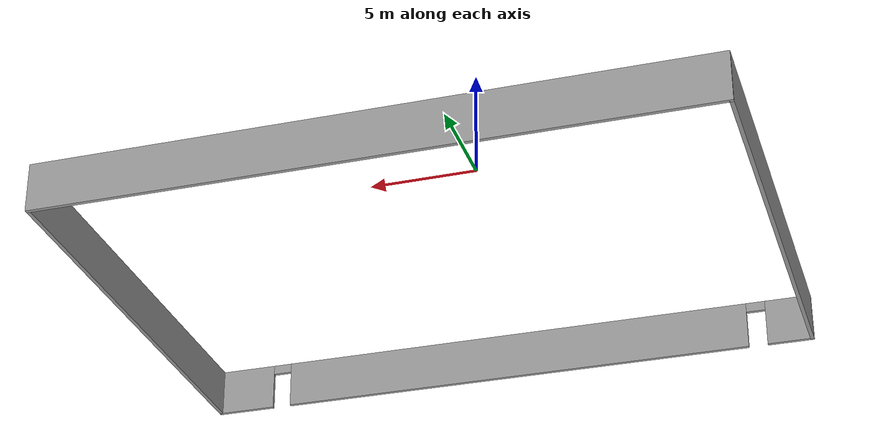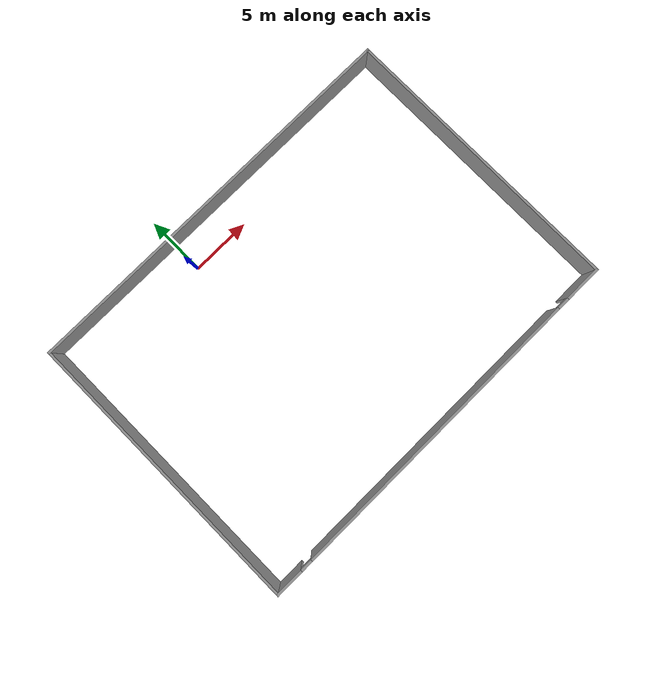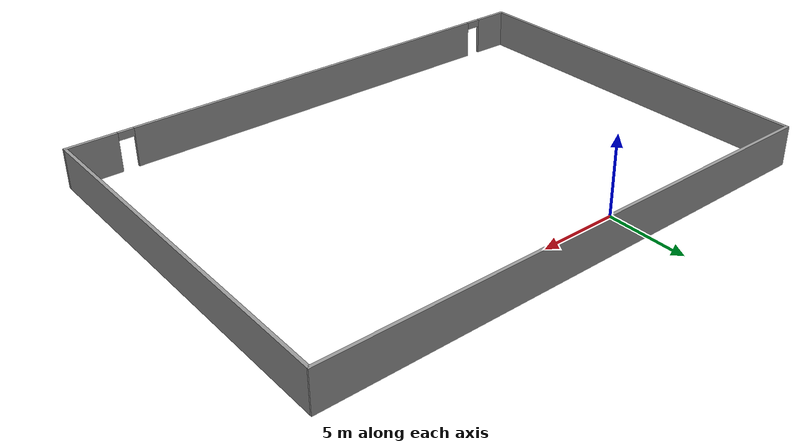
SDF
<?xml version='1.0'?>
<sdf version='1.4'>
  <model name='wall2'>
    <link name='Wall_10'>
      <collision name='Wall_10_Collision'>
        <geometry>
          <box>
            <size>24 0.2 2.5</size>
          </box>
        </geometry>
        <pose>0 0 1.25 0 -0 0</pose>
      </collision>
      <visual name='Wall_10_Visual'>
        <pose>0 0 1.25 0 -0 0</pose>
        <geometry>
          <box>
            <size>24 0.2 2.5</size>
          </box>
        </geometry>
        <material>
          <script>
            <uri>file://media/materials/scripts/gazebo.material</uri>
            <name>Gazebo/Grey</name>
          </script>
        </material>
      </visual>
      <velocity_decay>
        <linear>0</linear>
        <angular>0</angular>
      </velocity_decay>
      <pose>-12 -9.5 0 0 -0 1.5708</pose>
    </link>
    <link name='Wall_6'>
      <collision name='Wall_6_Collision'>
        <geometry>
          <box>
            <size>33.2 0.2 2.5</size>
          </box>
        </geometry>
        <pose>0 0 1.25 0 -0 0</pose>
      </collision>
      <visual name='Wall_6_Visual'>
        <pose>0 0 1.25 0 -0 0</pose>
        <geometry>
          <box>
            <size>33.2 0.2 2.5</size>
          </box>
        </geometry>
        <material>
          <script>
            <uri>file://media/materials/scripts/gazebo.material</uri>
            <name>Gazebo/Grey</name>
          </script>
        </material>
      </visual>
      <velocity_decay>
        <linear>0</linear>
        <angular>0</angular>
      </velocity_decay>
      <pose>4.5 2.5 0 0 -0 0</pose>
    </link>
    <link name='Wall_7'>
      <collision name='Wall_7_Collision'>
        <geometry>
          <box>
            <size>24 0.2 2.5</size>
          </box>
        </geometry>
        <pose>0 0 1.25 0 -0 0</pose>
      </collision>
      <visual name='Wall_7_Visual'>
        <pose>0 0 1.25 0 -0 0</pose>
        <geometry>
          <box>
            <size>24 0.2 2.5</size>
          </box>
        </geometry>
        <material>
          <script>
            <uri>file://media/materials/scripts/gazebo.material</uri>
            <name>Gazebo/Grey</name>
          </script>
        </material>
      </visual>
      <velocity_decay>
        <linear>0</linear>
        <angular>0</angular>
      </velocity_decay>
      <pose>21 -9.5 0 0 0 -1.5708</pose>
    </link>
    <link name='Wall_8'>
      <pose>4.5 -21.5 0 0 -0 3.14159</pose>
      <visual name='Wall_8_Visual_0'>
        <pose>-15.009 0 1.25 0 -0 0</pose>
        <geometry>
          <box>
            <size>3.182 0.2 2.5</size>
          </box>
        </geometry>
        <material>
          <script>
            <uri>file://media/materials/scripts/gazebo.material</uri>
            <name>Gazebo/Grey</name>
          </script>
        </material>
      </visual>
      <collision name='Wall_8_Collision_0'>
        <geometry>
          <box>
            <size>3.182 0.2 2.5</size>
          </box>
        </geometry>
        <pose>-15.009 0 1.25 0 -0 0</pose>
      </collision>
      <visual name='Wall_8_Visual_1'>
        <pose>0.382542 0 1.25 0 -0 0</pose>
        <geometry>
          <box>
            <size>25.6011 0.2 2.5</size>
          </box>
        </geometry>
        <material>
          <script>
            <uri>file://media/materials/scripts/gazebo.material</uri>
            <name>Gazebo/Grey</name>
          </script>
        </material>
      </visual>
      <collision name='Wall_8_Collision_1'>
        <geometry>
          <box>
            <size>25.6011 0.2 2.5</size>
          </box>
        </geometry>
        <pose>0.382542 0 1.25 0 -0 0</pose>
      </collision>
      <visual name='Wall_8_Visual_2'>
        <pose>15.3915 0 1.25 0 -0 0</pose>
        <geometry>
          <box>
            <size>2.41692 0.2 2.5</size>
          </box>
        </geometry>
        <material>
          <script>
            <uri>file://media/materials/scripts/gazebo.material</uri>
            <name>Gazebo/Grey</name>
          </script>
        </material>
      </visual>
      <collision name='Wall_8_Collision_2'>
        <geometry>
          <box>
            <size>2.41692 0.2 2.5</size>
          </box>
        </geometry>
        <pose>15.3915 0 1.25 0 -0 0</pose>
      </collision>
      <visual name='Wall_8_Visual_3'>
        <pose>-12.918 0 2.25 0 -0 0</pose>
        <geometry>
          <box>
            <size>1 0.2 0.5</size>
          </box>
        </geometry>
        <material>
          <script>
            <uri>file://media/materials/scripts/gazebo.material</uri>
            <name>Gazebo/Grey</name>
          </script>
        </material>
      </visual>
      <collision name='Wall_8_Collision_3'>
        <geometry>
          <box>
            <size>1 0.2 0.5</size>
          </box>
        </geometry>
        <pose>-12.918 0 2.25 0 -0 0</pose>
      </collision>
      <visual name='Wall_8_Visual_4'>
        <pose>13.6831 0 2.25 0 -0 0</pose>
        <geometry>
          <box>
            <size>1 0.2 0.5</size>
          </box>
        </geometry>
        <material>
          <script>
            <uri>file://media/materials/scripts/gazebo.material</uri>
            <name>Gazebo/Grey</name>
          </script>
        </material>
      </visual>
      <collision name='Wall_8_Collision_4'>
        <geometry>
          <box>
            <size>1 0.2 0.5</size>
          </box>
        </geometry>
        <pose>13.6831 0 2.25 0 -0 0</pose>
      </collision>
    </link>
    <static>1</static>
  </model>
</sdf>
